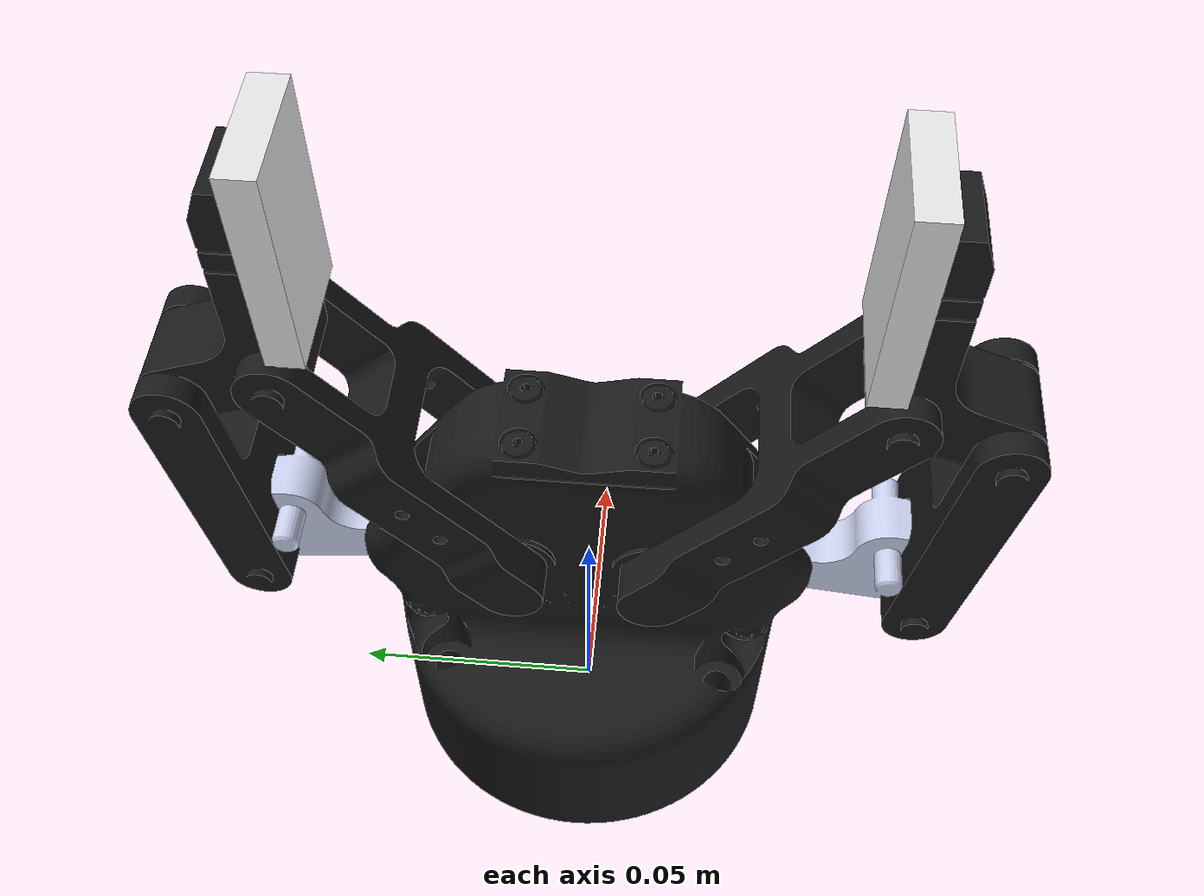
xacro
<?xml version="1.0"?>
<robot name="robotiq_arg2f_85_model" xmlns:xacro="http://ros.org/wiki/xacro">

  <!-- common stuff -->
  <xacro:include filename="$(find ur_description)/urdf/common.gazebo.xacro" />

  <xacro:include filename="$(find robotiq_2f_85_gripper_gazebo)/urdf/robotiq_arg2f_85_model_macro.xacro" />
  <xacro:robotiq_arg2f_85 prefix=""/>

  <link name="world" />

  <joint name="world_joint" type="fixed">
    <parent link="world" />
    <child link = "robotiq_arg2f_base_link" />
    <origin xyz="0.0 0.0 0.0" rpy="0.0 0.0 0.0" />
  </joint>

</robot>

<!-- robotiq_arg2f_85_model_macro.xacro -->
<robot xmlns:xacro="http://ros.org/wiki/xacro">
  <xacro:include filename="$(find robotiq_2f_85_gripper_gazebo)/urdf/robotiq_arg2f_transmission.xacro" />

  <xacro:macro name="outer_knuckle" params="prefix fingerprefix stroke">
    <link name="${prefix}${fingerprefix}_outer_knuckle">
      <inertial>
        <origin xyz="-0.000200000000003065 0.0199435877845359 0.0292245259211331" rpy="0 0 0" />
        <mass value="0.00853198276973456" />
        <inertia ixx="2.89328108496468E-06" ixy="-1.57935047237397E-19" ixz="-1.93980378593255E-19" iyy="1.86719750325683E-06" iyz="-1.21858577871576E-06" izz="1.21905238907251E-06" />
        </inertial>
      <visual>
        <origin xyz="0 0 0" rpy="${-pi/2} 0 0" />
        <geometry>
          <mesh filename="package://robotiq_2f_85_gripper_gazebo/meshes/visual/outer_knuckle.dae" scale="0.001 0.001 0.001"/>
        </geometry>
        <material name="">
          <color rgba="0.792156862745098 0.819607843137255 0.933333333333333 1" />
        </material>
      </visual>
      <collision>
        <origin xyz="0 0 0" rpy="0 0 0" />
        <geometry>
          <box size="0 0 0"/>
        </geometry>
      </collision>
    </link>
  </xacro:macro>

  <xacro:macro name="outer_finger" params="prefix fingerprefix stroke">
    <link name="${prefix}${fingerprefix}_outer_finger">
      <inertial>
        <origin xyz="0.00030115855001899 0.0373907951953854 -0.0208027427000385" rpy="0 0 0" />
        <mass value="0.022614240507152" />
        <inertia ixx="1.52518312458174E-05" ixy="9.76583423954399E-10" ixz="-5.43838577022588E-10" iyy="6.17694243867776E-06" iyz="6.78636130740228E-06" izz="1.16494917907219E-05" />
        </inertial>
      <visual>
        <origin xyz="0 0 0" rpy="0 0 0" />
        <geometry>
          <mesh filename="package://robotiq_2f_85_gripper_gazebo/meshes/visual/outer_finger.dae" scale="0.001 0.001 0.001"/>
        </geometry>
        <material name="">
          <color rgba="0.1 0.1 0.1 1" />
        </material>
      </visual>
      <collision>
        <origin xyz="0 0 0" rpy="0 0 0" />
        <geometry>
          <box size="0 0 0"/>
        </geometry>
      </collision>
    </link>
  </xacro:macro>

  <xacro:macro name="inner_knuckle" params="prefix fingerprefix stroke">
    <link name="${prefix}${fingerprefix}_inner_knuckle">
      <inertial>
        <origin xyz="0.000123011831763771 0.0507850843201817 0.00103968640075166" rpy="0 0 0" />
       <mass value="0.0271177346495152" />
        <inertia ixx="2.61910379223783E-05" ixy="-2.43616858946494E-07" ixz="-6.37789906117123E-09" iyy="2.8270243746167E-06" iyz="-5.37200748039765E-07" izz="2.83695868220296E-05" />
        </inertial>
      <visual>
        <origin xyz="0 0 0" rpy="0 0 0" />
        <geometry>
          <mesh filename="package://robotiq_2f_85_gripper_gazebo/meshes/visual/inner_knuckle.dae" scale="0.001 0.001 0.001"/>
        </geometry>
        <material name="">
          <color rgba="0.1 0.1 0.1 1" />
        </material>
      </visual>
      <collision>
        <origin xyz="0 0 0" rpy="0 0 0" />
        <geometry>
          <box size="0 0 0"/>
        </geometry>
      </collision>
    </link>
  </xacro:macro>

  <xacro:macro name="inner_finger" params="prefix fingerprefix stroke">
    <link name="${prefix}${fingerprefix}_inner_finger">
      <inertial>
        <origin xyz="0.000299999999999317 0.0160078233491243 -0.0136945669206257" rpy="0 0 0" />
        <mass value="0.0104003125914103" />
        <inertia ixx="2.71909453810972E-06" ixy="1.35402465472579E-21" ixz="-7.1817349065269E-22" iyy="7.69100314106116E-07" iyz="6.74715432769696E-07" izz="2.30315190420171E-06" />
        </inertial>
      <visual>
        <origin xyz="0 0 0" rpy="0 0 0" />
        <geometry>
          <mesh filename="package://robotiq_2f_85_gripper_gazebo/meshes/visual/inner_finger.dae" scale="0.001 0.001 0.001" />
        </geometry>
        <material name="">
          <color rgba="0.1 0.1 0.1 1" />
        </material>
      </visual>
      <collision>
        <origin xyz="0 0 0" rpy="0 0 0" />
        <geometry>
          <box size="0 0 0"/>
        </geometry>
      </collision>
    </link>
  </xacro:macro>

   <!-- Finger pad link, the default are the "big pads" with rubber-->
  <xacro:macro name="inner_finger_pad" params="prefix fingerprefix">
    <link name="${prefix}${fingerprefix}_inner_finger_pad">
      <visual>
        <origin xyz="0 0 0" rpy="0 0 0" />
        <geometry>
          <box size="0.022 0.00635 0.0375"/>
        </geometry>
        <material name="">
          <color rgba="0.9 0.9 0.9 1" />
        </material>
      </visual>
      <collision>
        <origin xyz="0 0 0" rpy="0 0 0" />
        <geometry>
           <box size="0.022 0.00635 0.0375"/>
        </geometry>
        <material name="">
          <color rgba="0.9 0.0 0.0 1" />
        </material>
      </collision>
    </link>
  </xacro:macro>

  <xacro:macro name="outer_finger_joint" params="prefix fingerprefix">
    <joint name="${prefix}${fingerprefix}_outer_finger_joint" type="fixed">
      <origin xyz="0 0.0315 -0.0041" rpy="0 0 0"/>
      <parent link="${prefix}${fingerprefix}_outer_knuckle" />
      <child link="${prefix}${fingerprefix}_outer_finger" />
      <axis xyz="1 0 0" />
    </joint>
  </xacro:macro>

  <xacro:macro name="inner_knuckle_joint" params="prefix fingerprefix reflect">
    <joint name="${prefix}${fingerprefix}_inner_knuckle_joint" type="revolute">
      <origin xyz="0 ${reflect * -0.0127} 0.06142" rpy="0 0 ${(1 + reflect) * pi / 2}"/>
      <parent link="${prefix}robotiq_arg2f_base_link" />
      <child link="${prefix}${fingerprefix}_inner_knuckle" />
      <axis xyz="1 0 0" />
      <limit lower="0" upper="0.8757" velocity="2.0" effort="1000" />
      <mimic joint="${prefix}finger_joint" multiplier="1" offset="0" />
    </joint>
  </xacro:macro>

  <xacro:macro name="inner_finger_joint" params="prefix fingerprefix">
    <joint name="${prefix}${fingerprefix}_inner_finger_joint" type="revolute">
      <origin xyz="0 0.0061 0.0471" rpy="0 0 0"/>
      <parent link="${prefix}${fingerprefix}_outer_finger" />
      <child link="${prefix}${fingerprefix}_inner_finger" />
      <axis xyz="1 0 0" />
      <limit lower="-0.8757" upper="0" velocity="2.0" effort="1000" />
      <mimic joint="${prefix}finger_joint" multiplier="-1" offset="0" />
    </joint>
  </xacro:macro>

  <xacro:macro name="inner_finger_pad_joint" params="prefix fingerprefix">
    <joint name="${prefix}${fingerprefix}_inner_finger_pad_joint" type="fixed">
      <origin xyz="0 -0.0220203446692936 0.03242" rpy="0 0 0"/>
      <parent link="${prefix}${fingerprefix}_inner_finger" />
      <child link="${prefix}${fingerprefix}_inner_finger_pad" />
      <axis xyz="0 0 1" />
    </joint>
  </xacro:macro>

  <xacro:include filename="$(find robotiq_2f_85_gripper_gazebo)/urdf/robotiq_arg2f.xacro" />

  <xacro:macro name="finger_joint" params="prefix">
    <joint name="${prefix}finger_joint" type="revolute">
      <origin xyz="0 -0.0306011 0.054904" rpy="0 0 ${pi}"/>
      <parent link="${prefix}robotiq_arg2f_base_link" />
      <child link="${prefix}left_outer_knuckle" />
      <axis xyz="1 0 0" />
      <limit lower="0" upper="0.8" velocity="2.0" effort="1000" />
    </joint>
    <xacro:finger_joints prefix="${prefix}" fingerprefix="left" reflect="1.0"/>
  </xacro:macro>

  <xacro:macro name="right_outer_knuckle_joint" params="prefix">
    <joint name="${prefix}right_outer_knuckle_joint" type="revolute">
      <origin xyz="0 0.0306011 0.054904" rpy="0 0 0"/>
      <parent link="${prefix}robotiq_arg2f_base_link" />
      <child link="${prefix}right_outer_knuckle" />
      <axis xyz="1 0 0" />
      <limit lower="0" upper="0.81" velocity="2.0" effort="1000" />
      <mimic joint="${prefix}finger_joint" multiplier="1" offset="0" />
    </joint>
    <xacro:finger_joints prefix="${prefix}" fingerprefix="right" reflect="-1.0"/>
  </xacro:macro>

  <!-- Initialization of all joints and links -->
  <xacro:macro name="robotiq_arg2f_85" params="prefix">
    <xacro:robotiq_arg2f_base_link prefix="${prefix}"/>
    <xacro:finger_links prefix="${prefix}" fingerprefix="left" stroke="85"/>
    <xacro:finger_links prefix="${prefix}" fingerprefix="right" stroke="85"/>
    <xacro:finger_joint prefix="${prefix}"/>
    <xacro:right_outer_knuckle_joint prefix="${prefix}"/>
    <xacro:robotiq_arg2f_transmission prefix="${prefix}"/>
  </xacro:macro>
</robot>

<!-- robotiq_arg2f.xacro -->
<robot xmlns:xacro="http://ros.org/wiki/xacro">
  <xacro:macro name="robotiq_arg2f_base_link" params="prefix">
    <link name="${prefix}robotiq_arg2f_base_link">
      <inertial>
        <origin xyz="8.625E-08 -4.6583E-06 0.03145" rpy="0 0 0" />
        <mass value="0.22652" />
        <inertia ixx="0.00020005" ixy="-4.2442E-10" ixz="-2.9069E-10" iyy="0.00017832" iyz="-3.4402E-08" izz="0.00013478" />
      </inertial>
      <visual>
        <origin xyz="0 0 0" rpy="0 0 0" />
        <geometry>
          <mesh filename="package://robotiq_2f_85_gripper_gazebo/meshes/visual/base.dae" scale="0.001 0.001 0.001"/>
        </geometry>
        <material name="">
          <color rgba="0.1 0.1 0.1 1" />
        </material>
      </visual>
      <collision>
        <origin xyz="0 0 0" rpy="0 0 0" />
        <geometry>
          <mesh filename="package://robotiq_2f_85_gripper_gazebo/meshes/collision/robotiq_arg2f_base_link.stl"/>
        </geometry>
      </collision>
    </link>
  </xacro:macro>

  <xacro:macro name="finger_joints" params="prefix fingerprefix reflect">
    <xacro:outer_finger_joint prefix="${prefix}" fingerprefix="${fingerprefix}"/>
    <xacro:inner_knuckle_joint prefix="${prefix}" fingerprefix="${fingerprefix}" reflect="${reflect}"/>
    <xacro:inner_finger_joint prefix="${prefix}" fingerprefix="${fingerprefix}"/>
    <xacro:inner_finger_pad_joint prefix="${prefix}" fingerprefix="${fingerprefix}"/>
  </xacro:macro>

  <xacro:macro name="finger_links" params="prefix fingerprefix stroke">
    <xacro:outer_knuckle prefix="${prefix}" fingerprefix="${fingerprefix}" stroke="${stroke}"/>
    <xacro:outer_finger prefix="${prefix}" fingerprefix="${fingerprefix}" stroke="${stroke}"/>
    <xacro:inner_finger prefix="${prefix}" fingerprefix="${fingerprefix}" stroke="${stroke}"/>
    <xacro:inner_finger_pad prefix="${prefix}" fingerprefix="${fingerprefix}"/>
    <xacro:inner_knuckle prefix="${prefix}" fingerprefix="${fingerprefix}" stroke="${stroke}"/>
  </xacro:macro>
</robot>
